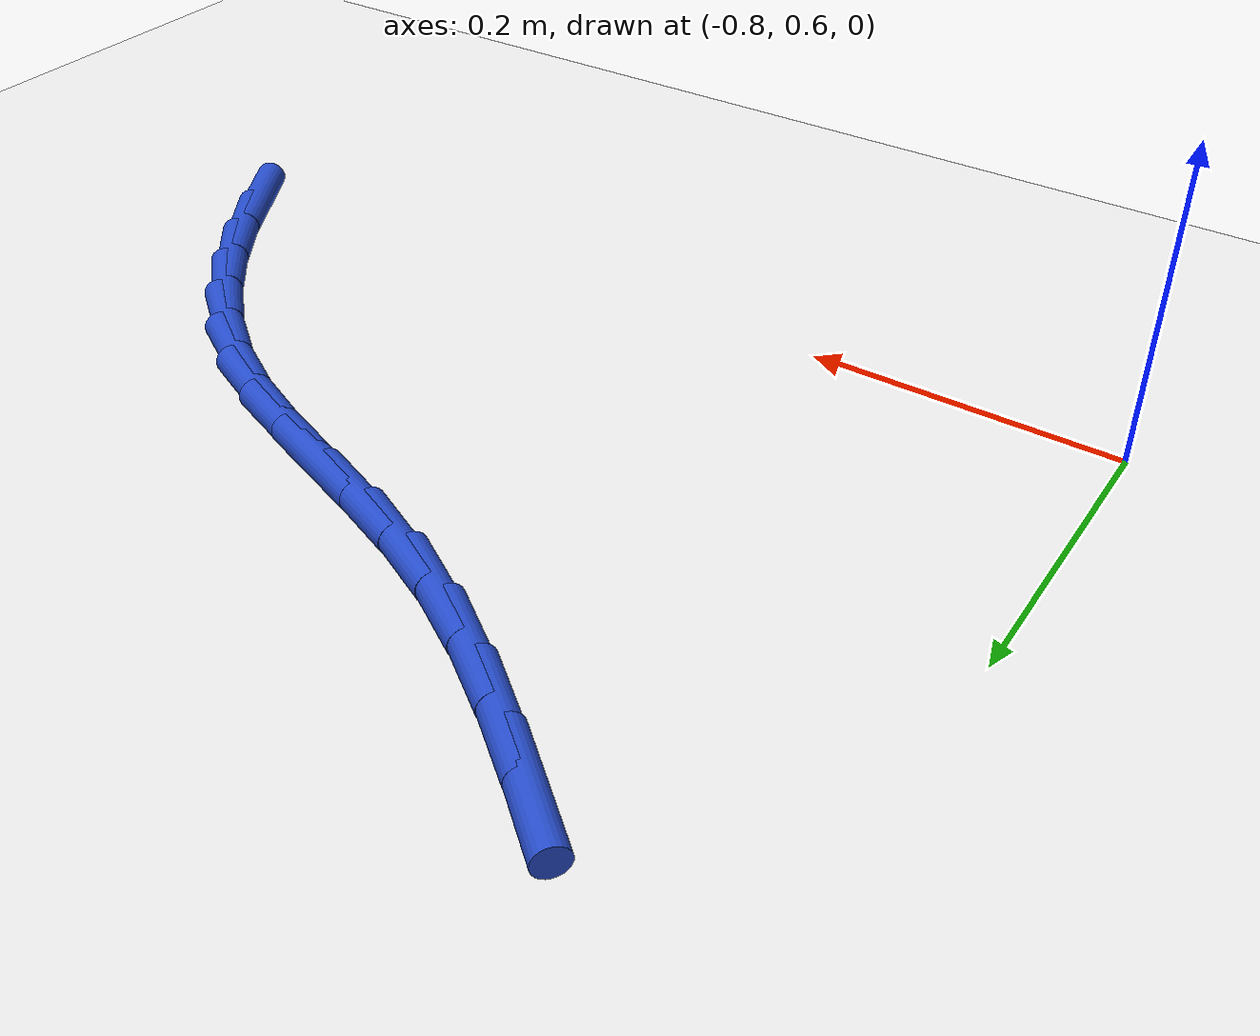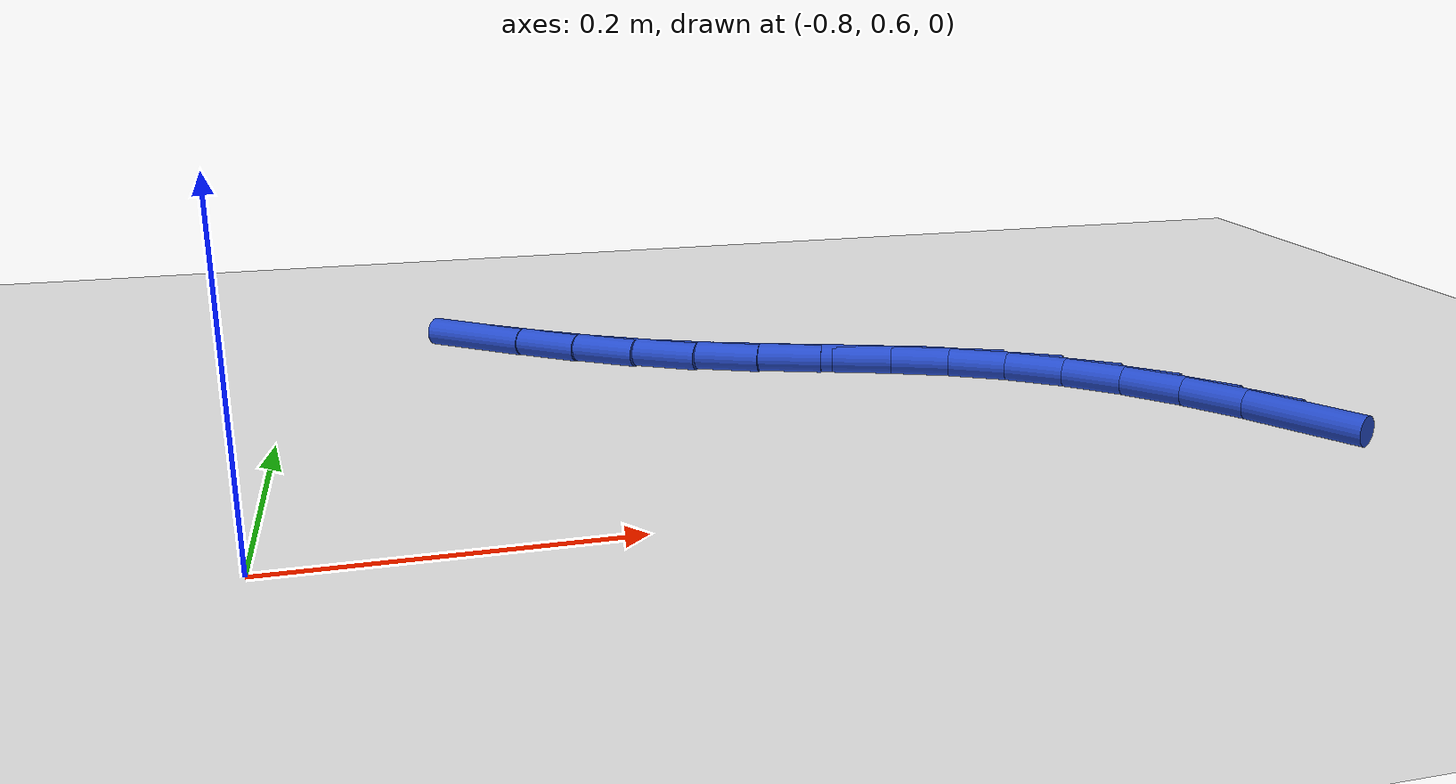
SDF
<sdf version="1.6">
 <world name="default">
  <model name="ground_plane">
   <static>1</static>
   <link name="link">
    <collision name="collision">
     <geometry><plane><normal>0 0 1</normal><size>100 100</size></plane></geometry>
     <surface><friction><ode><mu>100</mu><mu2>50</mu2></ode></friction></surface>
    </collision>
    <visual name="visual">
     <cast_shadows>0</cast_shadows>
     <geometry><plane><normal>0 0 1</normal><size>100 100</size></plane></geometry>
     <material>
      <script><uri>file://media/materials/scripts/gazebo.material</uri><name>Gazebo/WhiteGlow</name></script>
     </material>
    </visual>
   </link>
  </model>
  <model name="line">
   <link name="link_15">
    <pose>-0.17276336492508484 0.652683140153031 0.01 0 1.57 -1.0388101880823821</pose>
    <collision name="collision">
     <geometry><cylinder><radius>0.01</radius><length>0.08</length></cylinder></geometry>
    </collision>
    <visual name="visual">
     <material>
      <script><name>Gazebo/Blue</name><uri>file://media/materials/scripts/gazebo.material</uri></script>
     </material>
     <geometry><cylinder><radius>0.01</radius><length>0.08</length></cylinder></geometry>
    </visual>
   </link>
   <link name="link_16">
    <pose>-0.19529242256865492 0.6909595809474681 0.01 0 1.57 -0.9617363035974724</pose>
    <collision name="collision">
     <geometry><cylinder><radius>0.01</radius><length>0.08</length></cylinder></geometry>
    </collision>
    <visual name="visual">
     <material>
      <script><name>Gazebo/Blue</name><uri>file://media/materials/scripts/gazebo.material</uri></script>
     </material>
     <geometry><cylinder><radius>0.01</radius><length>0.08</length></cylinder></geometry>
    </visual>
   </link>
   <link name="link_17">
    <pose>-0.2201233565511216 0.7265584330492438 0.01 0 1.57 -0.8711731067692097</pose>
    <collision name="collision">
     <geometry><cylinder><radius>0.01</radius><length>0.08</length></cylinder></geometry>
    </collision>
    <visual name="visual">
     <material>
      <script><name>Gazebo/Blue</name><uri>file://media/materials/scripts/gazebo.material</uri></script>
     </material>
     <geometry><cylinder><radius>0.01</radius><length>0.08</length></cylinder></geometry>
    </visual>
   </link>
   <link name="link_18">
    <pose>-0.24747361442520116 0.7590546448436418 0.01 0 1.57 -0.7664604726029305</pose>
    <collision name="collision">
     <geometry><cylinder><radius>0.01</radius><length>0.08</length></cylinder></geometry>
    </collision>
    <visual name="visual">
     <material>
      <script><name>Gazebo/Blue</name><uri>file://media/materials/scripts/gazebo.material</uri></script>
     </material>
     <geometry><cylinder><radius>0.01</radius><length>0.08</length></cylinder></geometry>
    </visual>
   </link>
   <link name="link_19">
    <pose>-0.27756064374360934 0.7880231647159448 0.01 0 1.57 -0.6480344007831891</pose>
    <collision name="collision">
     <geometry><cylinder><radius>0.01</radius><length>0.08</length></cylinder></geometry>
    </collision>
    <visual name="visual">
     <material>
      <script><name>Gazebo/Blue</name><uri>file://media/materials/scripts/gazebo.material</uri></script>
     </material>
     <geometry><cylinder><radius>0.01</radius><length>0.08</length></cylinder></geometry>
    </visual>
   </link>
   <link name="link_20">
    <pose>-0.31060189205906247 0.8130389410514363 0.01 0 1.57 -0.519145211485778</pose>
    <collision name="collision">
     <geometry><cylinder><radius>0.01</radius><length>0.08</length></cylinder></geometry>
    </collision>
    <visual name="visual">
     <material>
      <script><name>Gazebo/Blue</name><uri>file://media/materials/scripts/gazebo.material</uri></script>
     </material>
     <geometry><cylinder><radius>0.01</radius><length>0.08</length></cylinder></geometry>
    </visual>
   </link>
   <link name="link_21">
    <pose>-0.3467924018624729 0.8337191890281186 0.01 0 1.57 -0.410825268227258</pose>
    <collision name="collision">
     <geometry><cylinder><radius>0.01</radius><length>0.08</length></cylinder></geometry>
    </collision>
    <visual name="visual">
     <material>
      <script><name>Gazebo/Blue</name><uri>file://media/materials/scripts/gazebo.material</uri></script>
     </material>
     <geometry><cylinder><radius>0.01</radius><length>0.08</length></cylinder></geometry>
    </visual>
   </link>
   <link name="link_22">
    <pose>-0.3857846314451838 0.8507047002861361 0.01 0 1.57 -0.3512769107563529</pose>
    <collision name="collision">
     <geometry><cylinder><radius>0.01</radius><length>0.08</length></cylinder></geometry>
    </collision>
    <visual name="visual">
     <material>
      <script><name>Gazebo/Blue</name><uri>file://media/materials/scripts/gazebo.material</uri></script>
     </material>
     <geometry><cylinder><radius>0.01</radius><length>0.08</length></cylinder></geometry>
    </visual>
   </link>
   <link name="link_23">
    <pose>-0.4266728593593721 0.8656892636651663 0.01 0 1.57 -0.33831316836929326</pose>
    <collision name="collision">
     <geometry><cylinder><radius>0.01</radius><length>0.08</length></cylinder></geometry>
    </collision>
    <visual name="visual">
     <material>
      <script><name>Gazebo/Blue</name><uri>file://media/materials/scripts/gazebo.material</uri></script>
     </material>
     <geometry><cylinder><radius>0.01</radius><length>0.08</length></cylinder></geometry>
    </visual>
   </link>
   <link name="link_24">
    <pose>-0.4685258392022841 0.8804148204263631 0.01 0 1.57 -0.3692167166954547</pose>
    <collision name="collision">
     <geometry><cylinder><radius>0.01</radius><length>0.08</length></cylinder></geometry>
    </collision>
    <visual name="visual">
     <material>
      <script><name>Gazebo/Blue</name><uri>file://media/materials/scripts/gazebo.material</uri></script>
     </material>
     <geometry><cylinder><radius>0.01</radius><length>0.08</length></cylinder></geometry>
    </visual>
   </link>
   <link name="link_25">
    <pose>-0.5104123245711665 0.8966233118308796 0.01 0 1.57 -0.44263984575909476</pose>
    <collision name="collision">
     <geometry><cylinder><radius>0.01</radius><length>0.08</length></cylinder></geometry>
    </collision>
    <visual name="visual">
     <material>
      <script><name>Gazebo/Blue</name><uri>file://media/materials/scripts/gazebo.material</uri></script>
     </material>
     <geometry><cylinder><radius>0.01</radius><length>0.08</length></cylinder></geometry>
    </visual>
   </link>
   <link name="link_26">
    <pose>-0.5514025981996287 0.9160530898649593 0.01 0 1.57 -0.5382495665432401</pose>
    <collision name="collision">
     <geometry><cylinder><radius>0.01</radius><length>0.08</length></cylinder></geometry>
    </collision>
    <visual name="visual">
     <material>
      <script><name>Gazebo/Blue</name><uri>file://media/materials/scripts/gazebo.material</uri></script>
     </material>
     <geometry><cylinder><radius>0.01</radius><length>0.08</length></cylinder></geometry>
    </visual>
   </link>
   <link name="link_27">
    <pose>-0.5909086997709394 0.9396403153730617 0.01 0 1.57 -0.6129470023603767</pose>
    <collision name="collision">
     <geometry><cylinder><radius>0.01</radius><length>0.08</length></cylinder></geometry>
    </collision>
    <visual name="visual">
     <material>
      <script><name>Gazebo/Blue</name><uri>file://media/materials/scripts/gazebo.material</uri></script>
     </material>
     <geometry><cylinder><radius>0.01</radius><length>0.08</length></cylinder></geometry>
    </visual>
   </link>
   <link name="link_28">
    <pose>-0.6291139935760048 0.9665106526806941 0.01 0 1.57 -0.6627587824089363</pose>
    <collision name="collision">
     <geometry><cylinder><radius>0.01</radius><length>0.08</length></cylinder></geometry>
    </collision>
    <visual name="visual">
     <material>
      <script><name>Gazebo/Blue</name><uri>file://media/materials/scripts/gazebo.material</uri></script>
     </material>
     <geometry><cylinder><radius>0.01</radius><length>0.08</length></cylinder></geometry>
    </visual>
   </link>
   <link name="link_29">
    <pose>-0.6663075899000868 0.9955415531654309 0.01 0 1.57 -0.6894790888531099</pose>
    <collision name="collision">
     <geometry><cylinder><radius>0.01</radius><length>0.08</length></cylinder></geometry>
    </collision>
    <visual name="visual">
     <material>
      <script><name>Gazebo/Blue</name><uri>file://media/materials/scripts/gazebo.material</uri></script>
     </material>
     <geometry><cylinder><radius>0.01</radius><length>0.08</length></cylinder></geometry>
    </visual>
   </link>
  </model>
 </world>
</sdf>
